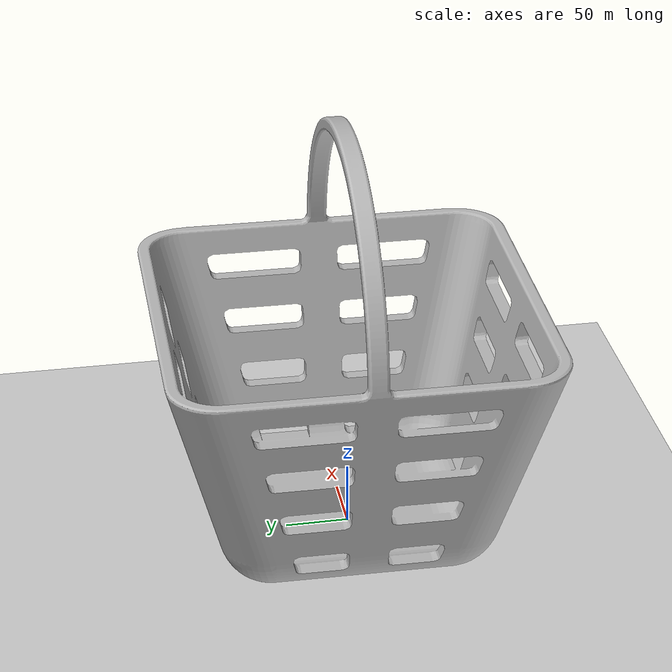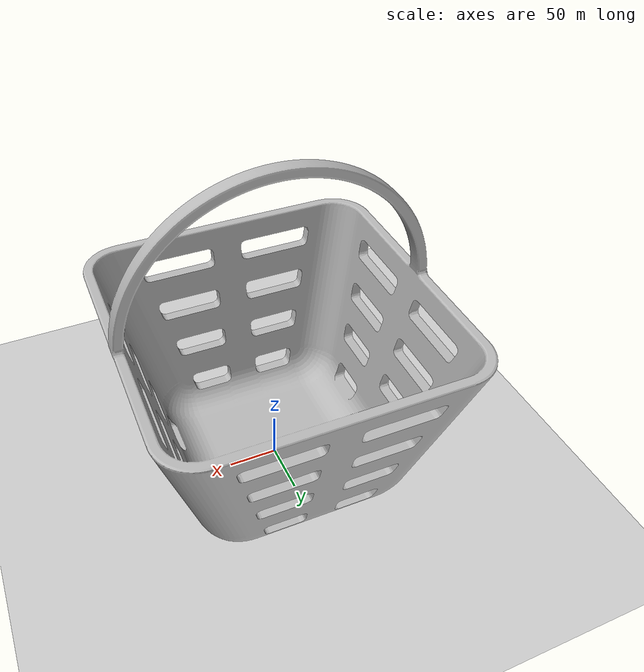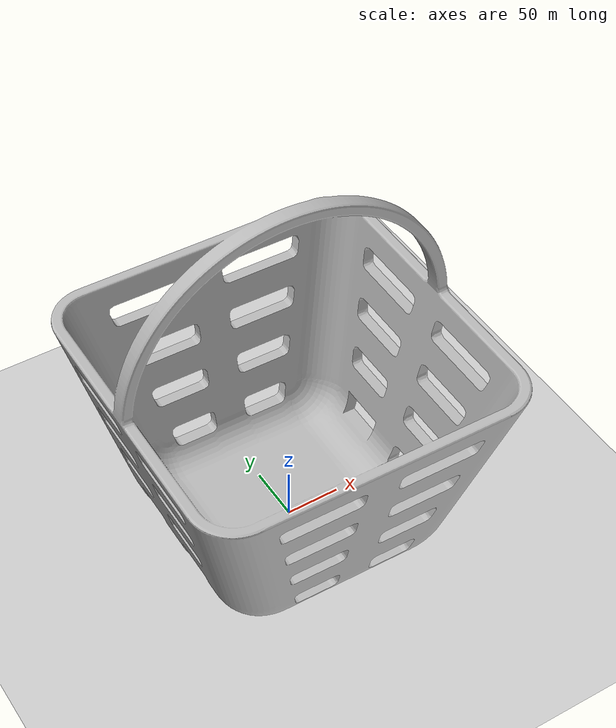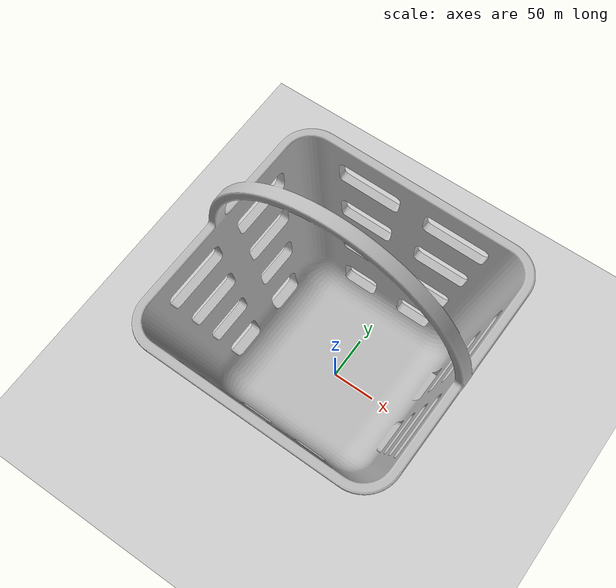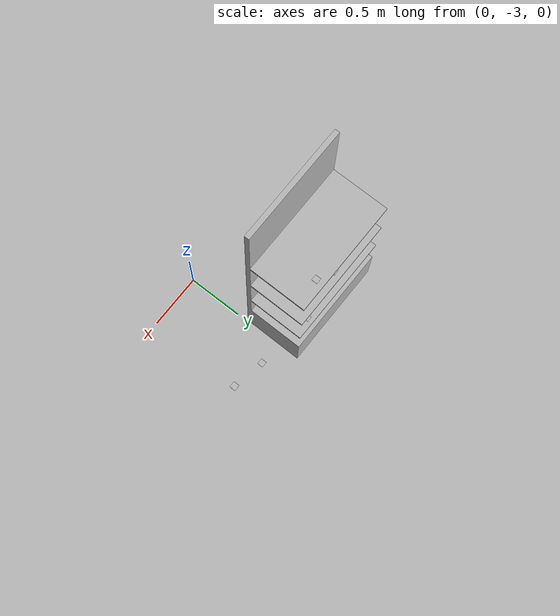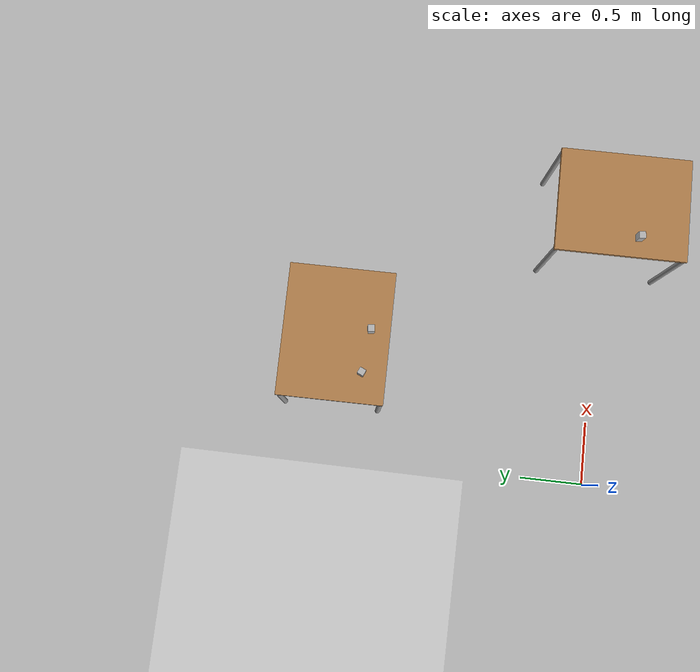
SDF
<sdf version="1.6">
 <world name="default">
  <plugin name="ros_link_attacher_plugin" filename="libgazebo_ros_link_attacher.so"/>
  <light name="sun" type="directional">
   <pose>0 0 10 0 -0 0</pose>
   <diffuse>0.8 0.8 0.8 1</diffuse>
   <specular>0.2 0.2 0.2 1</specular>
   <attenuation>
    <range>1000</range>
    <constant>0.9</constant>
    <linear>0.01</linear>
    <quadratic>0.001</quadratic>
   </attenuation>
   <direction>-0.5 0.1 -0.9</direction>
  </light>
  <model name="ground_plane">
   <static>1</static>
   <link name="link">
    <collision name="collision">
     <geometry><plane><normal>0 0 1</normal><size>100 100</size></plane></geometry>
     <surface>
      <contact><collide_bitmask>65535</collide_bitmask></contact>
      <friction><ode><mu>100</mu><mu2>50</mu2></ode></friction>
     </surface>
    </collision>
    <visual name="visual">
     <cast_shadows>0</cast_shadows>
     <geometry><plane><normal>0 0 1</normal><size>100 100</size></plane></geometry>
     <material>
      <script><uri>file://media/materials/scripts/gazebo.material</uri><name>Gazebo/Grey</name></script>
     </material>
    </visual>
   </link>
  </model>
  <gravity>0 0 -9.8</gravity>
  <magnetic_field>6e-06 2.3e-05 -4.2e-05</magnetic_field>
  <atmosphere type="adiabatic"/>
  <physics name="default_physics" default="0" type="ode">
   <max_step_size>0.001</max_step_size>
   <real_time_factor>1</real_time_factor>
   <real_time_update_rate>1000</real_time_update_rate>
  </physics>
  <scene><ambient>0.4 0.4 0.4 1</ambient><background>0.7 0.7 0.7 1</background><shadows>1</shadows></scene>
  <audio><device>default</device></audio>
  <spherical_coordinates>
   <surface_model>EARTH_WGS84</surface_model>
   <latitude_deg>0</latitude_deg>
   <longitude_deg>0</longitude_deg>
   <elevation>0</elevation>
   <heading_deg>0</heading_deg>
  </spherical_coordinates>
  <model name="table">
   <static>1</static>
   <link name="link">
    <collision name="surface">
     <pose>0 0 0.8 0 -0 0</pose>
     <geometry><box><size>1 0.8 0.03</size></box></geometry>
    </collision>
    <visual name="visual1">
     <pose>0 0 0.8 0 -0 0</pose>
     <geometry><box><size>1 0.8 0.03</size></box></geometry>
     <material>
      <script><uri>file://media/materials/scripts/gazebo.material</uri><name>Gazebo/Wood</name></script>
     </material>
    </visual>
    <collision name="front_left_leg">
     <pose>0.48 0.38 0.4 0 -0 0</pose>
     <geometry><cylinder><radius>0.02</radius><length>0.8</length></cylinder></geometry>
    </collision>
    <visual name="front_left_leg">
     <pose>0.48 0.38 0.4 0 -0 0</pose>
     <geometry><cylinder><radius>0.02</radius><length>0.8</length></cylinder></geometry>
     <material>
      <script><uri>file://media/materials/scripts/gazebo.material</uri><name>Gazebo/Grey</name></script>
     </material>
    </visual>
    <collision name="front_right_leg">
     <pose>0.48 -0.38 0.4 0 -0 0</pose>
     <geometry><cylinder><radius>0.02</radius><length>0.8</length></cylinder></geometry>
    </collision>
    <visual name="front_right_leg">
     <pose>0.48 -0.38 0.4 0 -0 0</pose>
     <geometry><cylinder><radius>0.02</radius><length>0.8</length></cylinder></geometry>
     <material>
      <script><uri>file://media/materials/scripts/gazebo.material</uri><name>Gazebo/Grey</name></script>
     </material>
    </visual>
    <collision name="back_right_leg">
     <pose>-0.48 -0.38 0.4 0 -0 0</pose>
     <geometry><cylinder><radius>0.02</radius><length>0.8</length></cylinder></geometry>
    </collision>
    <visual name="back_right_leg">
     <pose>-0.48 -0.38 0.4 0 -0 0</pose>
     <geometry><cylinder><radius>0.02</radius><length>0.8</length></cylinder></geometry>
     <material>
      <script><uri>file://media/materials/scripts/gazebo.material</uri><name>Gazebo/Grey</name></script>
     </material>
    </visual>
    <collision name="back_left_leg">
     <pose>-0.48 0.38 0.4 0 -0 0</pose>
     <geometry><cylinder><radius>0.02</radius><length>0.8</length></cylinder></geometry>
    </collision>
    <visual name="back_left_leg">
     <pose>-0.48 0.38 0.4 0 -0 0</pose>
     <geometry><cylinder><radius>0.02</radius><length>0.8</length></cylinder></geometry>
     <material>
      <script><uri>file://media/materials/scripts/gazebo.material</uri><name>Gazebo/Grey</name></script>
     </material>
    </visual>
    <velocity_decay><linear>0</linear><angular>0</angular></velocity_decay>
   </link>
   <pose>0.90199 2.08755 0 0 -0 3.14</pose>
  </model>
  <model name="table_0">
   <static>1</static>
   <link name="link">
    <collision name="surface">
     <pose>0 0 0.8 0 -0 0</pose>
     <geometry><box><size>1 0.8 0.03</size></box></geometry>
    </collision>
    <visual name="visual1">
     <pose>0 0 0.8 0 -0 0</pose>
     <geometry><box><size>1 0.8 0.03</size></box></geometry>
     <material>
      <script><uri>file://media/materials/scripts/gazebo.material</uri><name>Gazebo/Wood</name></script>
     </material>
    </visual>
    <collision name="front_left_leg">
     <pose>0.48 0.38 0.4 0 -0 0</pose>
     <geometry><cylinder><radius>0.02</radius><length>0.8</length></cylinder></geometry>
    </collision>
    <visual name="front_left_leg">
     <pose>0.48 0.38 0.4 0 -0 0</pose>
     <geometry><cylinder><radius>0.02</radius><length>0.8</length></cylinder></geometry>
     <material>
      <script><uri>file://media/materials/scripts/gazebo.material</uri><name>Gazebo/Grey</name></script>
     </material>
    </visual>
    <collision name="front_right_leg">
     <pose>0.48 -0.38 0.4 0 -0 0</pose>
     <geometry><cylinder><radius>0.02</radius><length>0.8</length></cylinder></geometry>
    </collision>
    <visual name="front_right_leg">
     <pose>0.48 -0.38 0.4 0 -0 0</pose>
     <geometry><cylinder><radius>0.02</radius><length>0.8</length></cylinder></geometry>
     <material>
      <script><uri>file://media/materials/scripts/gazebo.material</uri><name>Gazebo/Grey</name></script>
     </material>
    </visual>
    <collision name="back_right_leg">
     <pose>-0.48 -0.38 0.4 0 -0 0</pose>
     <geometry><cylinder><radius>0.02</radius><length>0.8</length></cylinder></geometry>
    </collision>
    <visual name="back_right_leg">
     <pose>-0.48 -0.38 0.4 0 -0 0</pose>
     <geometry><cylinder><radius>0.02</radius><length>0.8</length></cylinder></geometry>
     <material>
      <script><uri>file://media/materials/scripts/gazebo.material</uri><name>Gazebo/Grey</name></script>
     </material>
    </visual>
    <collision name="back_left_leg">
     <pose>-0.48 0.38 0.4 0 -0 0</pose>
     <geometry><cylinder><radius>0.02</radius><length>0.8</length></cylinder></geometry>
    </collision>
    <visual name="back_left_leg">
     <pose>-0.48 0.38 0.4 0 -0 0</pose>
     <geometry><cylinder><radius>0.02</radius><length>0.8</length></cylinder></geometry>
     <material>
      <script><uri>file://media/materials/scripts/gazebo.material</uri><name>Gazebo/Grey</name></script>
     </material>
    </visual>
    <velocity_decay><linear>0</linear><angular>0</angular></velocity_decay>
   </link>
   <pose>2.11403 0.023827 0 0 -0 1.57</pose>
  </model>
  <model name="table_1">
   <static>1</static>
   <link name="link">
    <collision name="surface">
     <pose>0 0 0.8 0 -0 0</pose>
     <geometry><box><size>1 0.8 0.03</size></box></geometry>
    </collision>
    <visual name="visual1">
     <pose>0 0 0.8 0 -0 0</pose>
     <geometry><box><size>1 0.8 0.03</size></box></geometry>
     <material>
      <script><uri>file://media/materials/scripts/gazebo.material</uri><name>Gazebo/Wood</name></script>
     </material>
    </visual>
    <collision name="front_left_leg">
     <pose>0.48 0.38 0.4 0 -0 0</pose>
     <geometry><cylinder><radius>0.02</radius><length>0.8</length></cylinder></geometry>
    </collision>
    <visual name="front_left_leg">
     <pose>0.48 0.38 0.4 0 -0 0</pose>
     <geometry><cylinder><radius>0.02</radius><length>0.8</length></cylinder></geometry>
     <material>
      <script><uri>file://media/materials/scripts/gazebo.material</uri><name>Gazebo/Grey</name></script>
     </material>
    </visual>
    <collision name="front_right_leg">
     <pose>0.48 -0.38 0.4 0 -0 0</pose>
     <geometry><cylinder><radius>0.02</radius><length>0.8</length></cylinder></geometry>
    </collision>
    <visual name="front_right_leg">
     <pose>0.48 -0.38 0.4 0 -0 0</pose>
     <geometry><cylinder><radius>0.02</radius><length>0.8</length></cylinder></geometry>
     <material>
      <script><uri>file://media/materials/scripts/gazebo.material</uri><name>Gazebo/Grey</name></script>
     </material>
    </visual>
    <collision name="back_right_leg">
     <pose>-0.48 -0.38 0.4 0 -0 0</pose>
     <geometry><cylinder><radius>0.02</radius><length>0.8</length></cylinder></geometry>
    </collision>
    <visual name="back_right_leg">
     <pose>-0.48 -0.38 0.4 0 -0 0</pose>
     <geometry><cylinder><radius>0.02</radius><length>0.8</length></cylinder></geometry>
     <material>
      <script><uri>file://media/materials/scripts/gazebo.material</uri><name>Gazebo/Grey</name></script>
     </material>
    </visual>
    <collision name="back_left_leg">
     <pose>-0.48 0.38 0.4 0 -0 0</pose>
     <geometry><cylinder><radius>0.02</radius><length>0.8</length></cylinder></geometry>
    </collision>
    <visual name="back_left_leg">
     <pose>-0.48 0.38 0.4 0 -0 0</pose>
     <geometry><cylinder><radius>0.02</radius><length>0.8</length></cylinder></geometry>
     <material>
      <script><uri>file://media/materials/scripts/gazebo.material</uri><name>Gazebo/Grey</name></script>
     </material>
    </visual>
    <velocity_decay><linear>0</linear><angular>0</angular></velocity_decay>
   </link>
   <pose>-1.06741 2.09391 0 0 -0 3.12841</pose>
  </model>
  <model name="aruco_cube_111">
   <static>0</static>
   <link name="link">
    <inertial>
     <mass>0.05</mass>
     <inertia>
      <ixx>5.2083e-05</ixx>
      <ixy>0</ixy>
      <ixz>0</ixz>
      <iyy>5.2083e-05</iyy>
      <iyz>0</iyz>
      <izz>2.0833e-05</izz>
     </inertia>
    </inertial>
    <collision name="colision">
     <geometry><box><size>0.05 0.05 0.1</size></box></geometry>
     <surface>
      <friction><ode><mu>30</mu><mu2>30</mu2><fdir1>0 0 0</fdir1></ode></friction>
      <contact><ode><kp>1e+06</kp><kd>100</kd><min_depth>0.0025</min_depth><max_vel>1</max_vel></ode></contact>
     </surface>
    </collision>
    <visual name="visual1">
     <geometry>
      <mesh><uri>model://aruco_cube_111/meshes/aruco_cube_5cm.dae</uri><scale>1 1 2</scale></mesh>
     </geometry>
    </visual>
    <velocity_decay><linear>0</linear><angular>0</angular></velocity_decay>
   </link>
   <pose>0.628225 1.86967 0.8625 0 0 -0.431998</pose>
  </model>
  <model name="aruco_cube_222">
   <static>0</static>
   <link name="link">
    <inertial>
     <mass>0.05</mass>
     <inertia>
      <ixx>5.2083e-05</ixx>
      <ixy>0</ixy>
      <ixz>0</ixz>
      <iyy>5.2083e-05</iyy>
      <iyz>0</iyz>
      <izz>2.0833e-05</izz>
     </inertia>
    </inertial>
    <collision name="colision">
     <geometry><box><size>0.05 0.05 0.1</size></box></geometry>
     <surface>
      <friction><ode><mu>30</mu><mu2>30</mu2><fdir1>0 0 0</fdir1></ode></friction>
      <contact><ode><kp>1e+06</kp><kd>100</kd><min_depth>0.0025</min_depth><max_vel>1</max_vel></ode></contact>
     </surface>
    </collision>
    <visual name="visual1">
     <geometry>
      <mesh><uri>model://aruco_cube_222/meshes/aruco_cube_5cm.dae</uri><scale>1 1 2</scale></mesh>
     </geometry>
    </visual>
    <velocity_decay><linear>0</linear><angular>0</angular></velocity_decay>
   </link>
   <pose>0.952506 1.83323 0.8625 0 -0 0.116176</pose>
  </model>
  <model name="aruco_cube_444">
   <static>0</static>
   <link name="link">
    <inertial>
     <mass>0.05</mass>
     <inertia>
      <ixx>5.2083e-05</ixx>
      <ixy>0</ixy>
      <ixz>0</ixz>
      <iyy>5.2083e-05</iyy>
      <iyz>0</iyz>
      <izz>2.0833e-05</izz>
     </inertia>
    </inertial>
    <collision name="colision">
     <geometry><box><size>0.05 0.05 0.1</size></box></geometry>
     <surface>
      <friction><ode><mu>30</mu><mu2>30</mu2><fdir1>0 0 0</fdir1></ode></friction>
      <contact><ode><kp>1e+06</kp><kd>100</kd><min_depth>0.0025</min_depth><max_vel>1</max_vel></ode></contact>
     </surface>
    </collision>
    <visual name="visual1">
     <geometry>
      <mesh><uri>model://aruco_cube_444/meshes/aruco_cube_5cm.dae</uri><scale>1 1 2</scale></mesh>
     </geometry>
    </visual>
    <velocity_decay><linear>0</linear><angular>0</angular></velocity_decay>
   </link>
   <pose>1.86376 -0.100997 0.862692 -0.001616 8.9e-05 0.102605</pose>
  </model>
  <model name="cab_3_shelves">
   <link name="link_0">
    <inertial>
     <mass>1</mass>
     <inertia>
      <ixx>0.166667</ixx>
      <ixy>0</ixy>
      <ixz>0</ixz>
      <iyy>0.166667</iyy>
      <iyz>0</iyz>
      <izz>0.166667</izz>
     </inertia>
    </inertial>
    <visual name="visual">
     <geometry><mesh><uri>model://0-blender/cab_3_shelves.dae</uri><scale>1 1 1</scale></mesh></geometry>
    </visual>
    <collision name="collision">
     <geometry><mesh><uri>model://0-blender/cab_3_shelves.dae</uri><scale>1 1 1</scale></mesh></geometry>
     <surface>
      <friction>
       <ode><mu>1</mu><mu2>1</mu2><fdir1>0 0 0</fdir1><slip1>0</slip1><slip2>0</slip2></ode>
       <torsional>
        <coefficient>1</coefficient>
        <patch_radius>0</patch_radius>
        <surface_radius>0</surface_radius>
        <use_patch_radius>1</use_patch_radius>
        <ode><slip>0</slip></ode>
       </torsional>
      </friction>
      <bounce><restitution_coefficient>0</restitution_coefficient><threshold>1e+06</threshold></bounce>
      <contact>
       <collide_without_contact>0</collide_without_contact>
       <collide_without_contact_bitmask>1</collide_without_contact_bitmask>
       <collide_bitmask>1</collide_bitmask>
       <ode>
        <soft_cfm>0</soft_cfm>
        <soft_erp>0.2</soft_erp>
        <kp>1e+13</kp>
        <kd>1</kd>
        <max_vel>0.01</max_vel>
        <min_depth>0</min_depth>
       </ode>
       <bullet>
        <split_impulse>1</split_impulse>
        <split_impulse_penetration_threshold>-0.01</split_impulse_penetration_threshold>
        <soft_cfm>0</soft_cfm>
        <soft_erp>0.2</soft_erp>
        <kp>1e+13</kp>
        <kd>1</kd>
       </bullet>
      </contact>
     </surface>
    </collision>
   </link>
   <static>1</static>
   <pose>-0.511044 -2.1004 0 0 -0 3.14</pose>
  </model>
  <model name="aruco_marker_original_111">
   <static>0</static>
   <link name="marker">
    <inertial>
     <mass>0.1</mass>
     <inertia><ixx>0</ixx><ixy>0</ixy><ixz>0</ixz><iyy>0</iyy><iyz>0</iyz><izz>0</izz></inertia>
    </inertial>
    <visual name="visual">
     <pose>0 0 0 0 -0 1.57</pose>
     <geometry><box><size>0.05 0.05 0.001</size></box></geometry>
     <material>
      <script>
       <uri>model://aruco_marker_original_111/material/scripts</uri>
       <uri>model://aruco_marker_original_111/material/textures</uri>
       <name>Aruco/aruco_marker_original_111</name>
      </script>
     </material>
    </visual>
    <collision name="collision"><geometry><box><size>0.05 0.05 0.001</size></box></geometry></collision>
    <self_collide>1</self_collide>
   </link>
   <pose>0.36354 -1.94089 0.853763 0 4e-06 3.14</pose>
  </model>
  <model name="aruco_marker_original_222">
   <static>0</static>
   <link name="marker">
    <inertial>
     <mass>0.1</mass>
     <inertia><ixx>0</ixx><ixy>0</ixy><ixz>0</ixz><iyy>0</iyy><iyz>0</iyz><izz>0</izz></inertia>
    </inertial>
    <visual name="visual">
     <pose>0 0 0 0 -0 1.57</pose>
     <geometry><box><size>0.05 0.05 0.001</size></box></geometry>
     <material>
      <script>
       <uri>model://aruco_marker_original_222/material/scripts</uri>
       <uri>model://aruco_marker_original_222/material/textures</uri>
       <name>Aruco/aruco_marker_original_222</name>
      </script>
     </material>
    </visual>
    <collision name="collision"><geometry><box><size>0.05 0.05 0.001</size></box></geometry></collision>
    <self_collide>1</self_collide>
   </link>
   <pose>0.715521 -1.91498 1.36019 -5e-06 -2e-06 3.14</pose>
  </model>
  <model name="aruco_marker_original_444">
   <static>0</static>
   <link name="marker">
    <inertial>
     <mass>0.1</mass>
     <inertia><ixx>0</ixx><ixy>0</ixy><ixz>0</ixz><iyy>0</iyy><iyz>0</iyz><izz>0</izz></inertia>
    </inertial>
    <visual name="visual">
     <pose>0 0 0 0 -0 1.57</pose>
     <geometry><box><size>0.05 0.05 0.001</size></box></geometry>
     <material>
      <script>
       <uri>model://aruco_marker_original_444/material/scripts</uri>
       <uri>model://aruco_marker_original_444/material/textures</uri>
       <name>Aruco/aruco_marker_original_444</name>
      </script>
     </material>
    </visual>
    <collision name="collision"><geometry><box><size>0.05 0.05 0.001</size></box></geometry></collision>
    <self_collide>1</self_collide>
   </link>
   <pose>-0.499495 -1.9228 1.1105 -7e-06 -9e-06 3.14</pose>
  </model>
  <model name="aruco_marker_original_582">
   <static>0</static>
   <link name="marker">
    <inertial>
     <mass>0.1</mass>
     <inertia><ixx>0</ixx><ixy>0</ixy><ixz>0</ixz><iyy>0</iyy><iyz>0</iyz><izz>0</izz></inertia>
    </inertial>
    <visual name="visual">
     <pose>0 0 0 0 -0 1.57</pose>
     <geometry><box><size>0.05 0.05 0.001</size></box></geometry>
     <material>
      <script>
       <uri>model://aruco_marker_original_582/material/scripts</uri>
       <uri>model://aruco_marker_original_582/material/textures</uri>
       <name>Aruco/aruco_marker_original_582</name>
      </script>
     </material>
    </visual>
    <collision name="collision"><geometry><box><size>0.05 0.05 0.001</size></box></geometry></collision>
    <self_collide>1</self_collide>
   </link>
   <pose>-0.251242 -1.92505 1.51049 -3e-06 3e-06 3.14</pose>
  </model>
  <model name="aruco_marker_original_333">
   <static>0</static>
   <link name="marker">
    <inertial>
     <mass>0.1</mass>
     <inertia><ixx>0</ixx><ixy>0</ixy><ixz>0</ixz><iyy>0</iyy><iyz>0</iyz><izz>0</izz></inertia>
    </inertial>
    <visual name="visual">
     <pose>0 0 0 0 -0 1.57</pose>
     <geometry><box><size>0.05 0.05 0.001</size></box></geometry>
     <material>
      <script>
       <uri>model://aruco_marker_original_333/material/scripts</uri>
       <uri>model://aruco_marker_original_333/material/textures</uri>
       <name>Aruco/aruco_marker_original_333</name>
      </script>
     </material>
    </visual>
    <collision name="collision"><geometry><box><size>0.05 0.05 0.001</size></box></geometry></collision>
    <self_collide>1</self_collide>
   </link>
   <pose>-0.179853 -1.91157 0.71049 2e-06 1e-05 0</pose>
  </model>
  <model name="basket">
   <pose>-1.06741 2.09391 0 0 -0 3.12841</pose>
   <static>0</static>
   <link name="link">
    <inertial>
     <mass>0.250</mass>
     <inertia>
      <ixx>0.003735</ixx>
      <ixy>0.0</ixy>
      <ixz>0.0</ixz>
      <iyy>0.003735</iyy>
      <iyz>0.0</iyz>
      <izz>0.003735</izz>
     </inertia>
    </inertial>
    <collision name="colision">
     <geometry><mesh><uri>model://basket/meshes/basket.dae</uri></mesh></geometry>
     <surface>
      <friction><ode><mu>30.0</mu><mu2>30.0</mu2><fdir1>0 0 0</fdir1></ode></friction>
      <contact>
       <ode><kp>1000000.0</kp><kd>100.0</kd><min_depth>0.0025</min_depth><max_vel>1.0</max_vel></ode>
      </contact>
     </surface>
    </collision>
    <visual name="visual1">
     <geometry><mesh><uri>model://basket/meshes/basket.dae</uri><scale>1 1 1</scale></mesh></geometry>
    </visual>
    <velocity_decay><linear>0.000000</linear><angular>0.000000</angular></velocity_decay>
   </link>
  </model>
 </world>
</sdf>
